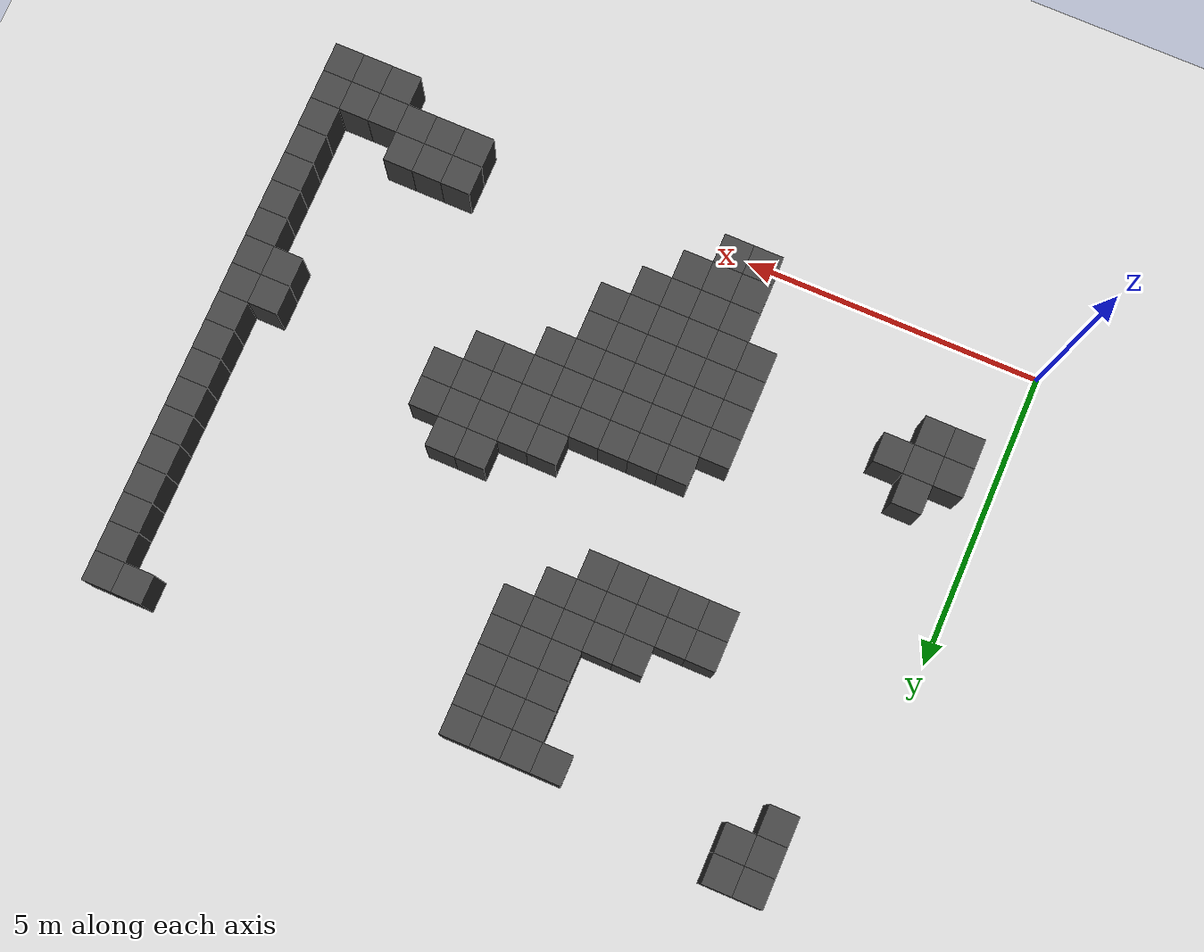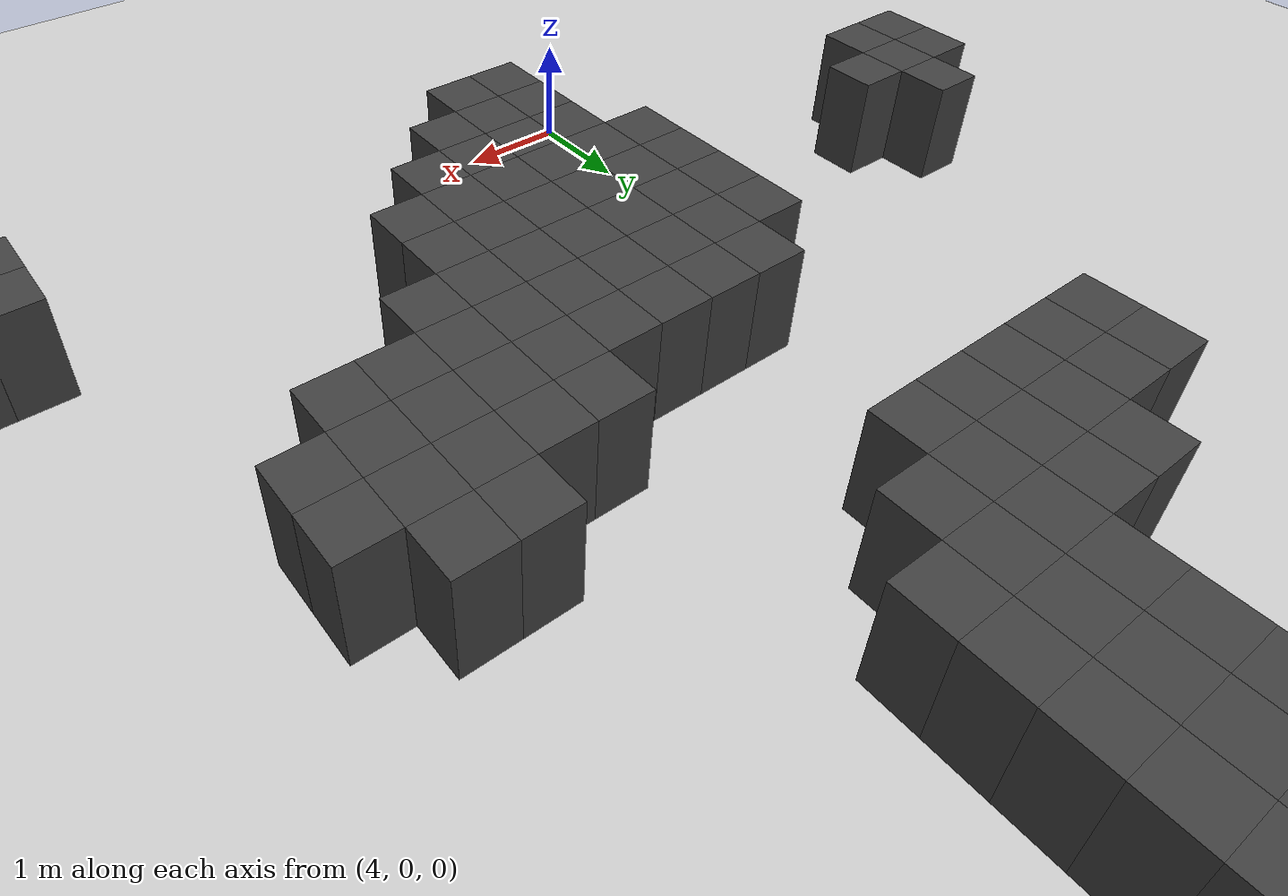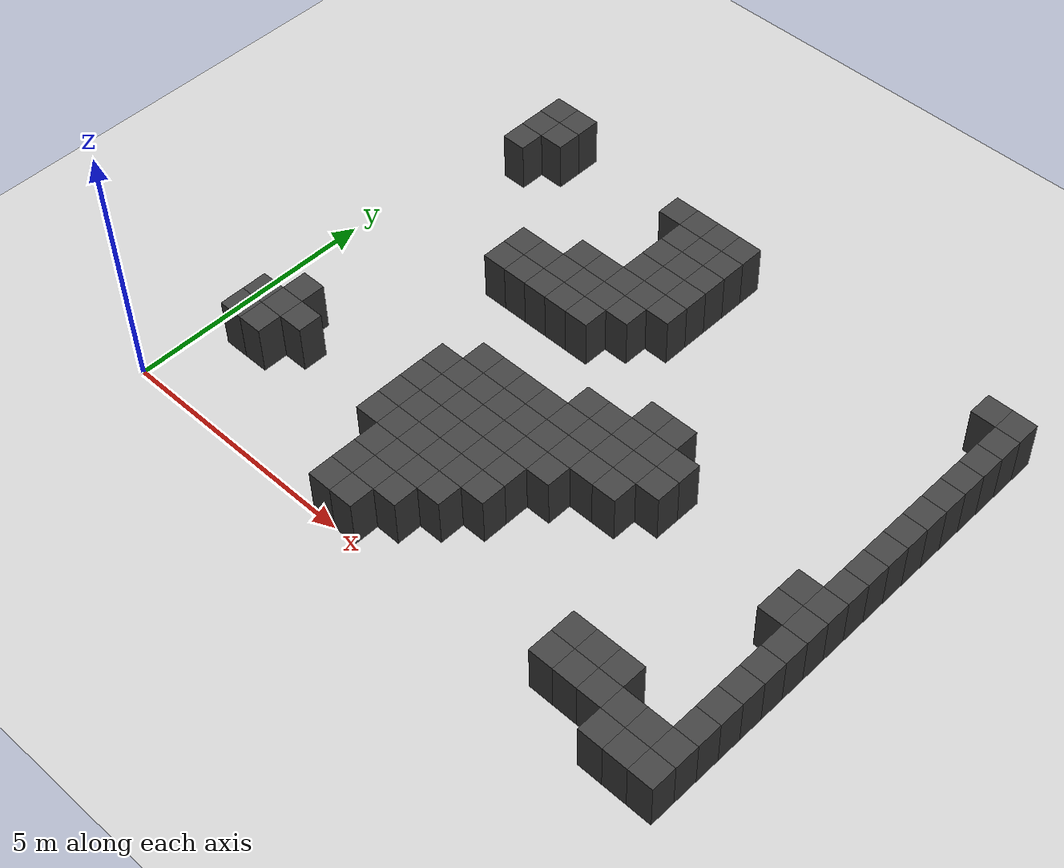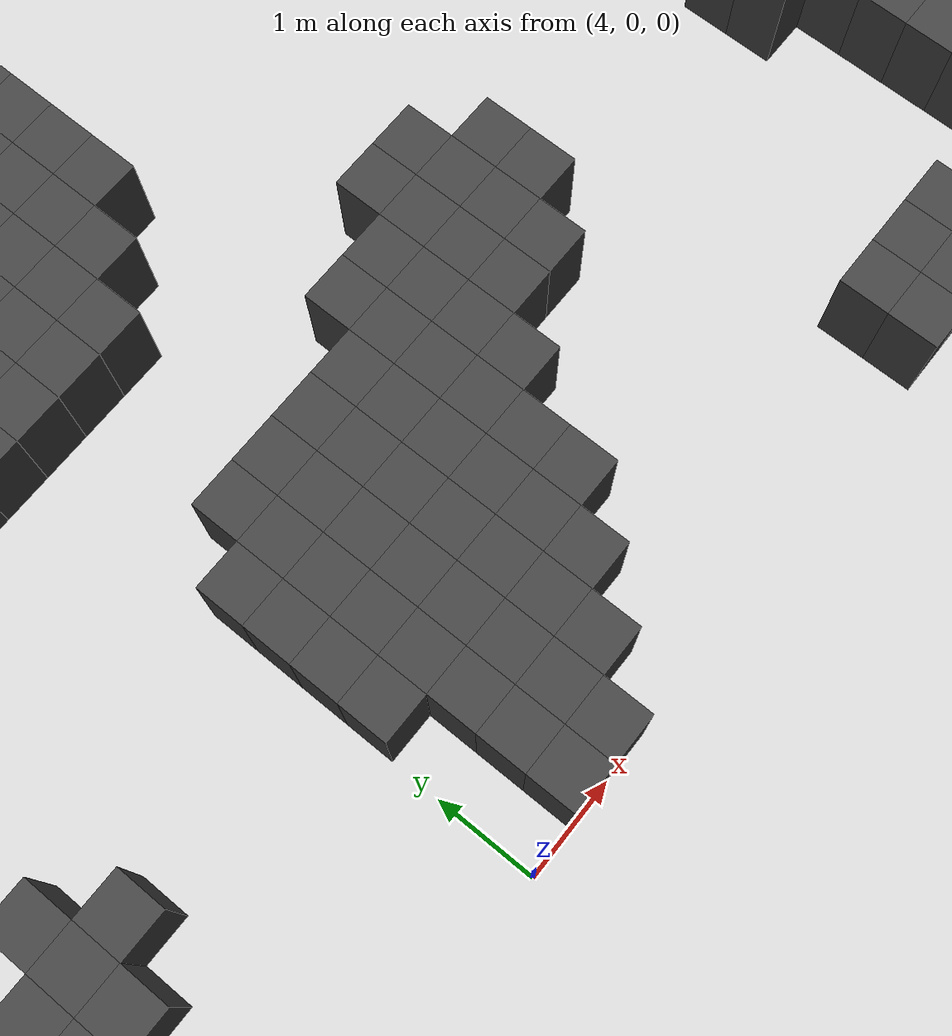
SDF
<sdf version="1.7">
 <world name="map_9687">
  <model name="ground_plane">
   <static>true</static>
   <link name="link">
    <collision name="collision">
     <geometry><plane><normal>0 0 1</normal><size>200 200</size></plane></geometry>
    </collision>
    <visual name="visual">
     <geometry><plane><normal>0 0 1</normal><size>200 200</size></plane></geometry>
     <material><ambient>0.8 0.8 0.8 1</ambient><diffuse>0.8 0.8 0.8 1</diffuse></material>
    </visual>
   </link>
  </model>
  <model name="maze_environment">
   <static>true</static>
   <link name="wall_177">
    <pose>1.250 9.250 0.500 0 0 0</pose>
    <collision name="col"><geometry><box><size>0.5 0.5 1.0</size></box></geometry></collision>
    <visual name="vis">
     <geometry><box><size>0.5 0.5 1.0</size></box></geometry>
     <material><ambient>0.15 0.15 0.15 1</ambient><diffuse>0.25 0.25 0.25 1</diffuse></material>
    </visual>
   </link>
   <link name="wall_178">
    <pose>1.750 9.250 0.500 0 0 0</pose>
    <collision name="col"><geometry><box><size>0.5 0.5 1.0</size></box></geometry></collision>
    <visual name="vis">
     <geometry><box><size>0.5 0.5 1.0</size></box></geometry>
     <material><ambient>0.15 0.15 0.15 1</ambient><diffuse>0.25 0.25 0.25 1</diffuse></material>
    </visual>
   </link>
   <link name="wall_193">
    <pose>1.250 8.750 0.500 0 0 0</pose>
    <collision name="col"><geometry><box><size>0.5 0.5 1.0</size></box></geometry></collision>
    <visual name="vis">
     <geometry><box><size>0.5 0.5 1.0</size></box></geometry>
     <material><ambient>0.15 0.15 0.15 1</ambient><diffuse>0.25 0.25 0.25 1</diffuse></material>
    </visual>
   </link>
   <link name="wall_194">
    <pose>1.750 8.750 0.500 0 0 0</pose>
    <collision name="col"><geometry><box><size>0.5 0.5 1.0</size></box></geometry></collision>
    <visual name="vis">
     <geometry><box><size>0.5 0.5 1.0</size></box></geometry>
     <material><ambient>0.15 0.15 0.15 1</ambient><diffuse>0.25 0.25 0.25 1</diffuse></material>
    </visual>
   </link>
   <link name="wall_195">
    <pose>4.750 8.750 0.500 0 0 0</pose>
    <collision name="col"><geometry><box><size>0.5 0.5 1.0</size></box></geometry></collision>
    <visual name="vis">
     <geometry><box><size>0.5 0.5 1.0</size></box></geometry>
     <material><ambient>0.15 0.15 0.15 1</ambient><diffuse>0.25 0.25 0.25 1</diffuse></material>
    </visual>
   </link>
   <link name="wall_196">
    <pose>5.250 8.750 0.500 0 0 0</pose>
    <collision name="col"><geometry><box><size>0.5 0.5 1.0</size></box></geometry></collision>
    <visual name="vis">
     <geometry><box><size>0.5 0.5 1.0</size></box></geometry>
     <material><ambient>0.15 0.15 0.15 1</ambient><diffuse>0.25 0.25 0.25 1</diffuse></material>
    </visual>
   </link>
   <link name="wall_197">
    <pose>5.750 8.750 0.500 0 0 0</pose>
    <collision name="col"><geometry><box><size>0.5 0.5 1.0</size></box></geometry></collision>
    <visual name="vis">
     <geometry><box><size>0.5 0.5 1.0</size></box></geometry>
     <material><ambient>0.15 0.15 0.15 1</ambient><diffuse>0.25 0.25 0.25 1</diffuse></material>
    </visual>
   </link>
   <link name="wall_198">
    <pose>6.250 8.750 0.500 0 0 0</pose>
    <collision name="col"><geometry><box><size>0.5 0.5 1.0</size></box></geometry></collision>
    <visual name="vis">
     <geometry><box><size>0.5 0.5 1.0</size></box></geometry>
     <material><ambient>0.15 0.15 0.15 1</ambient><diffuse>0.25 0.25 0.25 1</diffuse></material>
    </visual>
   </link>
   <link name="wall_199">
    <pose>11.750 8.750 0.500 0 0 0</pose>
    <collision name="col"><geometry><box><size>0.5 0.5 1.0</size></box></geometry></collision>
    <visual name="vis">
     <geometry><box><size>0.5 0.5 1.0</size></box></geometry>
     <material><ambient>0.15 0.15 0.15 1</ambient><diffuse>0.25 0.25 0.25 1</diffuse></material>
    </visual>
   </link>
   <link name="wall_200">
    <pose>12.250 8.750 0.500 0 0 0</pose>
    <collision name="col"><geometry><box><size>0.5 0.5 1.0</size></box></geometry></collision>
    <visual name="vis">
     <geometry><box><size>0.5 0.5 1.0</size></box></geometry>
     <material><ambient>0.15 0.15 0.15 1</ambient><diffuse>0.25 0.25 0.25 1</diffuse></material>
    </visual>
   </link>
   <link name="wall_205">
    <pose>1.250 8.250 0.500 0 0 0</pose>
    <collision name="col"><geometry><box><size>0.5 0.5 1.0</size></box></geometry></collision>
    <visual name="vis">
     <geometry><box><size>0.5 0.5 1.0</size></box></geometry>
     <material><ambient>0.15 0.15 0.15 1</ambient><diffuse>0.25 0.25 0.25 1</diffuse></material>
    </visual>
   </link>
   <link name="wall_206">
    <pose>5.250 8.250 0.500 0 0 0</pose>
    <collision name="col"><geometry><box><size>0.5 0.5 1.0</size></box></geometry></collision>
    <visual name="vis">
     <geometry><box><size>0.5 0.5 1.0</size></box></geometry>
     <material><ambient>0.15 0.15 0.15 1</ambient><diffuse>0.25 0.25 0.25 1</diffuse></material>
    </visual>
   </link>
   <link name="wall_207">
    <pose>5.750 8.250 0.500 0 0 0</pose>
    <collision name="col"><geometry><box><size>0.5 0.5 1.0</size></box></geometry></collision>
    <visual name="vis">
     <geometry><box><size>0.5 0.5 1.0</size></box></geometry>
     <material><ambient>0.15 0.15 0.15 1</ambient><diffuse>0.25 0.25 0.25 1</diffuse></material>
    </visual>
   </link>
   <link name="wall_208">
    <pose>6.250 8.250 0.500 0 0 0</pose>
    <collision name="col"><geometry><box><size>0.5 0.5 1.0</size></box></geometry></collision>
    <visual name="vis">
     <geometry><box><size>0.5 0.5 1.0</size></box></geometry>
     <material><ambient>0.15 0.15 0.15 1</ambient><diffuse>0.25 0.25 0.25 1</diffuse></material>
    </visual>
   </link>
   <link name="wall_209">
    <pose>12.250 8.250 0.500 0 0 0</pose>
    <collision name="col"><geometry><box><size>0.5 0.5 1.0</size></box></geometry></collision>
    <visual name="vis">
     <geometry><box><size>0.5 0.5 1.0</size></box></geometry>
     <material><ambient>0.15 0.15 0.15 1</ambient><diffuse>0.25 0.25 0.25 1</diffuse></material>
    </visual>
   </link>
   <link name="wall_218">
    <pose>5.250 7.750 0.500 0 0 0</pose>
    <collision name="col"><geometry><box><size>0.5 0.5 1.0</size></box></geometry></collision>
    <visual name="vis">
     <geometry><box><size>0.5 0.5 1.0</size></box></geometry>
     <material><ambient>0.15 0.15 0.15 1</ambient><diffuse>0.25 0.25 0.25 1</diffuse></material>
    </visual>
   </link>
   <link name="wall_219">
    <pose>5.750 7.750 0.500 0 0 0</pose>
    <collision name="col"><geometry><box><size>0.5 0.5 1.0</size></box></geometry></collision>
    <visual name="vis">
     <geometry><box><size>0.5 0.5 1.0</size></box></geometry>
     <material><ambient>0.15 0.15 0.15 1</ambient><diffuse>0.25 0.25 0.25 1</diffuse></material>
    </visual>
   </link>
   <link name="wall_220">
    <pose>6.250 7.750 0.500 0 0 0</pose>
    <collision name="col"><geometry><box><size>0.5 0.5 1.0</size></box></geometry></collision>
    <visual name="vis">
     <geometry><box><size>0.5 0.5 1.0</size></box></geometry>
     <material><ambient>0.15 0.15 0.15 1</ambient><diffuse>0.25 0.25 0.25 1</diffuse></material>
    </visual>
   </link>
   <link name="wall_221">
    <pose>12.250 7.750 0.500 0 0 0</pose>
    <collision name="col"><geometry><box><size>0.5 0.5 1.0</size></box></geometry></collision>
    <visual name="vis">
     <geometry><box><size>0.5 0.5 1.0</size></box></geometry>
     <material><ambient>0.15 0.15 0.15 1</ambient><diffuse>0.25 0.25 0.25 1</diffuse></material>
    </visual>
   </link>
   <link name="wall_231">
    <pose>5.250 7.250 0.500 0 0 0</pose>
    <collision name="col"><geometry><box><size>0.5 0.5 1.0</size></box></geometry></collision>
    <visual name="vis">
     <geometry><box><size>0.5 0.5 1.0</size></box></geometry>
     <material><ambient>0.15 0.15 0.15 1</ambient><diffuse>0.25 0.25 0.25 1</diffuse></material>
    </visual>
   </link>
   <link name="wall_232">
    <pose>5.750 7.250 0.500 0 0 0</pose>
    <collision name="col"><geometry><box><size>0.5 0.5 1.0</size></box></geometry></collision>
    <visual name="vis">
     <geometry><box><size>0.5 0.5 1.0</size></box></geometry>
     <material><ambient>0.15 0.15 0.15 1</ambient><diffuse>0.25 0.25 0.25 1</diffuse></material>
    </visual>
   </link>
   <link name="wall_233">
    <pose>6.250 7.250 0.500 0 0 0</pose>
    <collision name="col"><geometry><box><size>0.5 0.5 1.0</size></box></geometry></collision>
    <visual name="vis">
     <geometry><box><size>0.5 0.5 1.0</size></box></geometry>
     <material><ambient>0.15 0.15 0.15 1</ambient><diffuse>0.25 0.25 0.25 1</diffuse></material>
    </visual>
   </link>
   <link name="wall_234">
    <pose>12.250 7.250 0.500 0 0 0</pose>
    <collision name="col"><geometry><box><size>0.5 0.5 1.0</size></box></geometry></collision>
    <visual name="vis">
     <geometry><box><size>0.5 0.5 1.0</size></box></geometry>
     <material><ambient>0.15 0.15 0.15 1</ambient><diffuse>0.25 0.25 0.25 1</diffuse></material>
    </visual>
   </link>
   <link name="wall_244">
    <pose>4.250 6.750 0.500 0 0 0</pose>
    <collision name="col"><geometry><box><size>0.5 0.5 1.0</size></box></geometry></collision>
    <visual name="vis">
     <geometry><box><size>0.5 0.5 1.0</size></box></geometry>
     <material><ambient>0.15 0.15 0.15 1</ambient><diffuse>0.25 0.25 0.25 1</diffuse></material>
    </visual>
   </link>
   <link name="wall_245">
    <pose>4.750 6.750 0.500 0 0 0</pose>
    <collision name="col"><geometry><box><size>0.5 0.5 1.0</size></box></geometry></collision>
    <visual name="vis">
     <geometry><box><size>0.5 0.5 1.0</size></box></geometry>
     <material><ambient>0.15 0.15 0.15 1</ambient><diffuse>0.25 0.25 0.25 1</diffuse></material>
    </visual>
   </link>
   <link name="wall_246">
    <pose>5.250 6.750 0.500 0 0 0</pose>
    <collision name="col"><geometry><box><size>0.5 0.5 1.0</size></box></geometry></collision>
    <visual name="vis">
     <geometry><box><size>0.5 0.5 1.0</size></box></geometry>
     <material><ambient>0.15 0.15 0.15 1</ambient><diffuse>0.25 0.25 0.25 1</diffuse></material>
    </visual>
   </link>
   <link name="wall_247">
    <pose>5.750 6.750 0.500 0 0 0</pose>
    <collision name="col"><geometry><box><size>0.5 0.5 1.0</size></box></geometry></collision>
    <visual name="vis">
     <geometry><box><size>0.5 0.5 1.0</size></box></geometry>
     <material><ambient>0.15 0.15 0.15 1</ambient><diffuse>0.25 0.25 0.25 1</diffuse></material>
    </visual>
   </link>
   <link name="wall_248">
    <pose>6.250 6.750 0.500 0 0 0</pose>
    <collision name="col"><geometry><box><size>0.5 0.5 1.0</size></box></geometry></collision>
    <visual name="vis">
     <geometry><box><size>0.5 0.5 1.0</size></box></geometry>
     <material><ambient>0.15 0.15 0.15 1</ambient><diffuse>0.25 0.25 0.25 1</diffuse></material>
    </visual>
   </link>
   <link name="wall_249">
    <pose>12.250 6.750 0.500 0 0 0</pose>
    <collision name="col"><geometry><box><size>0.5 0.5 1.0</size></box></geometry></collision>
    <visual name="vis">
     <geometry><box><size>0.5 0.5 1.0</size></box></geometry>
     <material><ambient>0.15 0.15 0.15 1</ambient><diffuse>0.25 0.25 0.25 1</diffuse></material>
    </visual>
   </link>
   <link name="wall_256">
    <pose>3.250 6.250 0.500 0 0 0</pose>
    <collision name="col"><geometry><box><size>0.5 0.5 1.0</size></box></geometry></collision>
    <visual name="vis">
     <geometry><box><size>0.5 0.5 1.0</size></box></geometry>
     <material><ambient>0.15 0.15 0.15 1</ambient><diffuse>0.25 0.25 0.25 1</diffuse></material>
    </visual>
   </link>
   <link name="wall_257">
    <pose>3.750 6.250 0.500 0 0 0</pose>
    <collision name="col"><geometry><box><size>0.5 0.5 1.0</size></box></geometry></collision>
    <visual name="vis">
     <geometry><box><size>0.5 0.5 1.0</size></box></geometry>
     <material><ambient>0.15 0.15 0.15 1</ambient><diffuse>0.25 0.25 0.25 1</diffuse></material>
    </visual>
   </link>
   <link name="wall_258">
    <pose>4.250 6.250 0.500 0 0 0</pose>
    <collision name="col"><geometry><box><size>0.5 0.5 1.0</size></box></geometry></collision>
    <visual name="vis">
     <geometry><box><size>0.5 0.5 1.0</size></box></geometry>
     <material><ambient>0.15 0.15 0.15 1</ambient><diffuse>0.25 0.25 0.25 1</diffuse></material>
    </visual>
   </link>
   <link name="wall_259">
    <pose>4.750 6.250 0.500 0 0 0</pose>
    <collision name="col"><geometry><box><size>0.5 0.5 1.0</size></box></geometry></collision>
    <visual name="vis">
     <geometry><box><size>0.5 0.5 1.0</size></box></geometry>
     <material><ambient>0.15 0.15 0.15 1</ambient><diffuse>0.25 0.25 0.25 1</diffuse></material>
    </visual>
   </link>
   <link name="wall_260">
    <pose>5.250 6.250 0.500 0 0 0</pose>
    <collision name="col"><geometry><box><size>0.5 0.5 1.0</size></box></geometry></collision>
    <visual name="vis">
     <geometry><box><size>0.5 0.5 1.0</size></box></geometry>
     <material><ambient>0.15 0.15 0.15 1</ambient><diffuse>0.25 0.25 0.25 1</diffuse></material>
    </visual>
   </link>
   <link name="wall_261">
    <pose>5.750 6.250 0.500 0 0 0</pose>
    <collision name="col"><geometry><box><size>0.5 0.5 1.0</size></box></geometry></collision>
    <visual name="vis">
     <geometry><box><size>0.5 0.5 1.0</size></box></geometry>
     <material><ambient>0.15 0.15 0.15 1</ambient><diffuse>0.25 0.25 0.25 1</diffuse></material>
    </visual>
   </link>
   <link name="wall_262">
    <pose>12.250 6.250 0.500 0 0 0</pose>
    <collision name="col"><geometry><box><size>0.5 0.5 1.0</size></box></geometry></collision>
    <visual name="vis">
     <geometry><box><size>0.5 0.5 1.0</size></box></geometry>
     <material><ambient>0.15 0.15 0.15 1</ambient><diffuse>0.25 0.25 0.25 1</diffuse></material>
    </visual>
   </link>
   <link name="wall_267">
    <pose>3.250 5.750 0.500 0 0 0</pose>
    <collision name="col"><geometry><box><size>0.5 0.5 1.0</size></box></geometry></collision>
    <visual name="vis">
     <geometry><box><size>0.5 0.5 1.0</size></box></geometry>
     <material><ambient>0.15 0.15 0.15 1</ambient><diffuse>0.25 0.25 0.25 1</diffuse></material>
    </visual>
   </link>
   <link name="wall_268">
    <pose>3.750 5.750 0.500 0 0 0</pose>
    <collision name="col"><geometry><box><size>0.5 0.5 1.0</size></box></geometry></collision>
    <visual name="vis">
     <geometry><box><size>0.5 0.5 1.0</size></box></geometry>
     <material><ambient>0.15 0.15 0.15 1</ambient><diffuse>0.25 0.25 0.25 1</diffuse></material>
    </visual>
   </link>
   <link name="wall_269">
    <pose>4.250 5.750 0.500 0 0 0</pose>
    <collision name="col"><geometry><box><size>0.5 0.5 1.0</size></box></geometry></collision>
    <visual name="vis">
     <geometry><box><size>0.5 0.5 1.0</size></box></geometry>
     <material><ambient>0.15 0.15 0.15 1</ambient><diffuse>0.25 0.25 0.25 1</diffuse></material>
    </visual>
   </link>
   <link name="wall_270">
    <pose>4.750 5.750 0.500 0 0 0</pose>
    <collision name="col"><geometry><box><size>0.5 0.5 1.0</size></box></geometry></collision>
    <visual name="vis">
     <geometry><box><size>0.5 0.5 1.0</size></box></geometry>
     <material><ambient>0.15 0.15 0.15 1</ambient><diffuse>0.25 0.25 0.25 1</diffuse></material>
    </visual>
   </link>
   <link name="wall_271">
    <pose>5.250 5.750 0.500 0 0 0</pose>
    <collision name="col"><geometry><box><size>0.5 0.5 1.0</size></box></geometry></collision>
    <visual name="vis">
     <geometry><box><size>0.5 0.5 1.0</size></box></geometry>
     <material><ambient>0.15 0.15 0.15 1</ambient><diffuse>0.25 0.25 0.25 1</diffuse></material>
    </visual>
   </link>
   <link name="wall_272">
    <pose>12.250 5.750 0.500 0 0 0</pose>
    <collision name="col"><geometry><box><size>0.5 0.5 1.0</size></box></geometry></collision>
    <visual name="vis">
     <geometry><box><size>0.5 0.5 1.0</size></box></geometry>
     <material><ambient>0.15 0.15 0.15 1</ambient><diffuse>0.25 0.25 0.25 1</diffuse></material>
    </visual>
   </link>
   <link name="wall_277">
    <pose>12.250 5.250 0.500 0 0 0</pose>
    <collision name="col"><geometry><box><size>0.5 0.5 1.0</size></box></geometry></collision>
    <visual name="vis">
     <geometry><box><size>0.5 0.5 1.0</size></box></geometry>
     <material><ambient>0.15 0.15 0.15 1</ambient><diffuse>0.25 0.25 0.25 1</diffuse></material>
    </visual>
   </link>
   <link name="wall_283">
    <pose>7.750 4.750 0.500 0 0 0</pose>
    <collision name="col"><geometry><box><size>0.5 0.5 1.0</size></box></geometry></collision>
    <visual name="vis">
     <geometry><box><size>0.5 0.5 1.0</size></box></geometry>
     <material><ambient>0.15 0.15 0.15 1</ambient><diffuse>0.25 0.25 0.25 1</diffuse></material>
    </visual>
   </link>
   <link name="wall_284">
    <pose>8.250 4.750 0.500 0 0 0</pose>
    <collision name="col"><geometry><box><size>0.5 0.5 1.0</size></box></geometry></collision>
    <visual name="vis">
     <geometry><box><size>0.5 0.5 1.0</size></box></geometry>
     <material><ambient>0.15 0.15 0.15 1</ambient><diffuse>0.25 0.25 0.25 1</diffuse></material>
    </visual>
   </link>
   <link name="wall_285">
    <pose>12.250 4.750 0.500 0 0 0</pose>
    <collision name="col"><geometry><box><size>0.5 0.5 1.0</size></box></geometry></collision>
    <visual name="vis">
     <geometry><box><size>0.5 0.5 1.0</size></box></geometry>
     <material><ambient>0.15 0.15 0.15 1</ambient><diffuse>0.25 0.25 0.25 1</diffuse></material>
    </visual>
   </link>
   <link name="wall_296">
    <pose>6.750 4.250 0.500 0 0 0</pose>
    <collision name="col"><geometry><box><size>0.5 0.5 1.0</size></box></geometry></collision>
    <visual name="vis">
     <geometry><box><size>0.5 0.5 1.0</size></box></geometry>
     <material><ambient>0.15 0.15 0.15 1</ambient><diffuse>0.25 0.25 0.25 1</diffuse></material>
    </visual>
   </link>
   <link name="wall_297">
    <pose>7.250 4.250 0.500 0 0 0</pose>
    <collision name="col"><geometry><box><size>0.5 0.5 1.0</size></box></geometry></collision>
    <visual name="vis">
     <geometry><box><size>0.5 0.5 1.0</size></box></geometry>
     <material><ambient>0.15 0.15 0.15 1</ambient><diffuse>0.25 0.25 0.25 1</diffuse></material>
    </visual>
   </link>
   <link name="wall_298">
    <pose>7.750 4.250 0.500 0 0 0</pose>
    <collision name="col"><geometry><box><size>0.5 0.5 1.0</size></box></geometry></collision>
    <visual name="vis">
     <geometry><box><size>0.5 0.5 1.0</size></box></geometry>
     <material><ambient>0.15 0.15 0.15 1</ambient><diffuse>0.25 0.25 0.25 1</diffuse></material>
    </visual>
   </link>
   <link name="wall_299">
    <pose>8.250 4.250 0.500 0 0 0</pose>
    <collision name="col"><geometry><box><size>0.5 0.5 1.0</size></box></geometry></collision>
    <visual name="vis">
     <geometry><box><size>0.5 0.5 1.0</size></box></geometry>
     <material><ambient>0.15 0.15 0.15 1</ambient><diffuse>0.25 0.25 0.25 1</diffuse></material>
    </visual>
   </link>
   <link name="wall_300">
    <pose>8.750 4.250 0.500 0 0 0</pose>
    <collision name="col"><geometry><box><size>0.5 0.5 1.0</size></box></geometry></collision>
    <visual name="vis">
     <geometry><box><size>0.5 0.5 1.0</size></box></geometry>
     <material><ambient>0.15 0.15 0.15 1</ambient><diffuse>0.25 0.25 0.25 1</diffuse></material>
    </visual>
   </link>
   <link name="wall_301">
    <pose>12.250 4.250 0.500 0 0 0</pose>
    <collision name="col"><geometry><box><size>0.5 0.5 1.0</size></box></geometry></collision>
    <visual name="vis">
     <geometry><box><size>0.5 0.5 1.0</size></box></geometry>
     <material><ambient>0.15 0.15 0.15 1</ambient><diffuse>0.25 0.25 0.25 1</diffuse></material>
    </visual>
   </link>
   <link name="wall_314">
    <pose>4.750 3.750 0.500 0 0 0</pose>
    <collision name="col"><geometry><box><size>0.5 0.5 1.0</size></box></geometry></collision>
    <visual name="vis">
     <geometry><box><size>0.5 0.5 1.0</size></box></geometry>
     <material><ambient>0.15 0.15 0.15 1</ambient><diffuse>0.25 0.25 0.25 1</diffuse></material>
    </visual>
   </link>
   <link name="wall_315">
    <pose>5.250 3.750 0.500 0 0 0</pose>
    <collision name="col"><geometry><box><size>0.5 0.5 1.0</size></box></geometry></collision>
    <visual name="vis">
     <geometry><box><size>0.5 0.5 1.0</size></box></geometry>
     <material><ambient>0.15 0.15 0.15 1</ambient><diffuse>0.25 0.25 0.25 1</diffuse></material>
    </visual>
   </link>
   <link name="wall_316">
    <pose>5.750 3.750 0.500 0 0 0</pose>
    <collision name="col"><geometry><box><size>0.5 0.5 1.0</size></box></geometry></collision>
    <visual name="vis">
     <geometry><box><size>0.5 0.5 1.0</size></box></geometry>
     <material><ambient>0.15 0.15 0.15 1</ambient><diffuse>0.25 0.25 0.25 1</diffuse></material>
    </visual>
   </link>
   <link name="wall_317">
    <pose>6.250 3.750 0.500 0 0 0</pose>
    <collision name="col"><geometry><box><size>0.5 0.5 1.0</size></box></geometry></collision>
    <visual name="vis">
     <geometry><box><size>0.5 0.5 1.0</size></box></geometry>
     <material><ambient>0.15 0.15 0.15 1</ambient><diffuse>0.25 0.25 0.25 1</diffuse></material>
    </visual>
   </link>
   <link name="wall_318">
    <pose>6.750 3.750 0.500 0 0 0</pose>
    <collision name="col"><geometry><box><size>0.5 0.5 1.0</size></box></geometry></collision>
    <visual name="vis">
     <geometry><box><size>0.5 0.5 1.0</size></box></geometry>
     <material><ambient>0.15 0.15 0.15 1</ambient><diffuse>0.25 0.25 0.25 1</diffuse></material>
    </visual>
   </link>
   <link name="wall_319">
    <pose>7.250 3.750 0.500 0 0 0</pose>
    <collision name="col"><geometry><box><size>0.5 0.5 1.0</size></box></geometry></collision>
    <visual name="vis">
     <geometry><box><size>0.5 0.5 1.0</size></box></geometry>
     <material><ambient>0.15 0.15 0.15 1</ambient><diffuse>0.25 0.25 0.25 1</diffuse></material>
    </visual>
   </link>
   <link name="wall_320">
    <pose>7.750 3.750 0.500 0 0 0</pose>
    <collision name="col"><geometry><box><size>0.5 0.5 1.0</size></box></geometry></collision>
    <visual name="vis">
     <geometry><box><size>0.5 0.5 1.0</size></box></geometry>
     <material><ambient>0.15 0.15 0.15 1</ambient><diffuse>0.25 0.25 0.25 1</diffuse></material>
    </visual>
   </link>
   <link name="wall_321">
    <pose>8.250 3.750 0.500 0 0 0</pose>
    <collision name="col"><geometry><box><size>0.5 0.5 1.0</size></box></geometry></collision>
    <visual name="vis">
     <geometry><box><size>0.5 0.5 1.0</size></box></geometry>
     <material><ambient>0.15 0.15 0.15 1</ambient><diffuse>0.25 0.25 0.25 1</diffuse></material>
    </visual>
   </link>
   <link name="wall_322">
    <pose>8.750 3.750 0.500 0 0 0</pose>
    <collision name="col"><geometry><box><size>0.5 0.5 1.0</size></box></geometry></collision>
    <visual name="vis">
     <geometry><box><size>0.5 0.5 1.0</size></box></geometry>
     <material><ambient>0.15 0.15 0.15 1</ambient><diffuse>0.25 0.25 0.25 1</diffuse></material>
    </visual>
   </link>
   <link name="wall_323">
    <pose>11.750 3.750 0.500 0 0 0</pose>
    <collision name="col"><geometry><box><size>0.5 0.5 1.0</size></box></geometry></collision>
    <visual name="vis">
     <geometry><box><size>0.5 0.5 1.0</size></box></geometry>
     <material><ambient>0.15 0.15 0.15 1</ambient><diffuse>0.25 0.25 0.25 1</diffuse></material>
    </visual>
   </link>
   <link name="wall_324">
    <pose>12.250 3.750 0.500 0 0 0</pose>
    <collision name="col"><geometry><box><size>0.5 0.5 1.0</size></box></geometry></collision>
    <visual name="vis">
     <geometry><box><size>0.5 0.5 1.0</size></box></geometry>
     <material><ambient>0.15 0.15 0.15 1</ambient><diffuse>0.25 0.25 0.25 1</diffuse></material>
    </visual>
   </link>
   <link name="wall_336">
    <pose>4.250 3.250 0.500 0 0 0</pose>
    <collision name="col"><geometry><box><size>0.5 0.5 1.0</size></box></geometry></collision>
    <visual name="vis">
     <geometry><box><size>0.5 0.5 1.0</size></box></geometry>
     <material><ambient>0.15 0.15 0.15 1</ambient><diffuse>0.25 0.25 0.25 1</diffuse></material>
    </visual>
   </link>
   <link name="wall_337">
    <pose>4.750 3.250 0.500 0 0 0</pose>
    <collision name="col"><geometry><box><size>0.5 0.5 1.0</size></box></geometry></collision>
    <visual name="vis">
     <geometry><box><size>0.5 0.5 1.0</size></box></geometry>
     <material><ambient>0.15 0.15 0.15 1</ambient><diffuse>0.25 0.25 0.25 1</diffuse></material>
    </visual>
   </link>
   <link name="wall_338">
    <pose>5.250 3.250 0.500 0 0 0</pose>
    <collision name="col"><geometry><box><size>0.5 0.5 1.0</size></box></geometry></collision>
    <visual name="vis">
     <geometry><box><size>0.5 0.5 1.0</size></box></geometry>
     <material><ambient>0.15 0.15 0.15 1</ambient><diffuse>0.25 0.25 0.25 1</diffuse></material>
    </visual>
   </link>
   <link name="wall_339">
    <pose>5.750 3.250 0.500 0 0 0</pose>
    <collision name="col"><geometry><box><size>0.5 0.5 1.0</size></box></geometry></collision>
    <visual name="vis">
     <geometry><box><size>0.5 0.5 1.0</size></box></geometry>
     <material><ambient>0.15 0.15 0.15 1</ambient><diffuse>0.25 0.25 0.25 1</diffuse></material>
    </visual>
   </link>
   <link name="wall_340">
    <pose>6.250 3.250 0.500 0 0 0</pose>
    <collision name="col"><geometry><box><size>0.5 0.5 1.0</size></box></geometry></collision>
    <visual name="vis">
     <geometry><box><size>0.5 0.5 1.0</size></box></geometry>
     <material><ambient>0.15 0.15 0.15 1</ambient><diffuse>0.25 0.25 0.25 1</diffuse></material>
    </visual>
   </link>
   <link name="wall_341">
    <pose>6.750 3.250 0.500 0 0 0</pose>
    <collision name="col"><geometry><box><size>0.5 0.5 1.0</size></box></geometry></collision>
    <visual name="vis">
     <geometry><box><size>0.5 0.5 1.0</size></box></geometry>
     <material><ambient>0.15 0.15 0.15 1</ambient><diffuse>0.25 0.25 0.25 1</diffuse></material>
    </visual>
   </link>
   <link name="wall_342">
    <pose>7.250 3.250 0.500 0 0 0</pose>
    <collision name="col"><geometry><box><size>0.5 0.5 1.0</size></box></geometry></collision>
    <visual name="vis">
     <geometry><box><size>0.5 0.5 1.0</size></box></geometry>
     <material><ambient>0.15 0.15 0.15 1</ambient><diffuse>0.25 0.25 0.25 1</diffuse></material>
    </visual>
   </link>
   <link name="wall_343">
    <pose>7.750 3.250 0.500 0 0 0</pose>
    <collision name="col"><geometry><box><size>0.5 0.5 1.0</size></box></geometry></collision>
    <visual name="vis">
     <geometry><box><size>0.5 0.5 1.0</size></box></geometry>
     <material><ambient>0.15 0.15 0.15 1</ambient><diffuse>0.25 0.25 0.25 1</diffuse></material>
    </visual>
   </link>
   <link name="wall_344">
    <pose>8.250 3.250 0.500 0 0 0</pose>
    <collision name="col"><geometry><box><size>0.5 0.5 1.0</size></box></geometry></collision>
    <visual name="vis">
     <geometry><box><size>0.5 0.5 1.0</size></box></geometry>
     <material><ambient>0.15 0.15 0.15 1</ambient><diffuse>0.25 0.25 0.25 1</diffuse></material>
    </visual>
   </link>
   <link name="wall_345">
    <pose>11.750 3.250 0.500 0 0 0</pose>
    <collision name="col"><geometry><box><size>0.5 0.5 1.0</size></box></geometry></collision>
    <visual name="vis">
     <geometry><box><size>0.5 0.5 1.0</size></box></geometry>
     <material><ambient>0.15 0.15 0.15 1</ambient><diffuse>0.25 0.25 0.25 1</diffuse></material>
    </visual>
   </link>
   <link name="wall_346">
    <pose>12.250 3.250 0.500 0 0 0</pose>
    <collision name="col"><geometry><box><size>0.5 0.5 1.0</size></box></geometry></collision>
    <visual name="vis">
     <geometry><box><size>0.5 0.5 1.0</size></box></geometry>
     <material><ambient>0.15 0.15 0.15 1</ambient><diffuse>0.25 0.25 0.25 1</diffuse></material>
    </visual>
   </link>
   <link name="wall_357">
    <pose>1.250 2.750 0.500 0 0 0</pose>
    <collision name="col"><geometry><box><size>0.5 0.5 1.0</size></box></geometry></collision>
    <visual name="vis">
     <geometry><box><size>0.5 0.5 1.0</size></box></geometry>
     <material><ambient>0.15 0.15 0.15 1</ambient><diffuse>0.25 0.25 0.25 1</diffuse></material>
    </visual>
   </link>
   <link name="wall_358">
    <pose>4.250 2.750 0.500 0 0 0</pose>
    <collision name="col"><geometry><box><size>0.5 0.5 1.0</size></box></geometry></collision>
    <visual name="vis">
     <geometry><box><size>0.5 0.5 1.0</size></box></geometry>
     <material><ambient>0.15 0.15 0.15 1</ambient><diffuse>0.25 0.25 0.25 1</diffuse></material>
    </visual>
   </link>
   <link name="wall_359">
    <pose>4.750 2.750 0.500 0 0 0</pose>
    <collision name="col"><geometry><box><size>0.5 0.5 1.0</size></box></geometry></collision>
    <visual name="vis">
     <geometry><box><size>0.5 0.5 1.0</size></box></geometry>
     <material><ambient>0.15 0.15 0.15 1</ambient><diffuse>0.25 0.25 0.25 1</diffuse></material>
    </visual>
   </link>
   <link name="wall_360">
    <pose>5.250 2.750 0.500 0 0 0</pose>
    <collision name="col"><geometry><box><size>0.5 0.5 1.0</size></box></geometry></collision>
    <visual name="vis">
     <geometry><box><size>0.5 0.5 1.0</size></box></geometry>
     <material><ambient>0.15 0.15 0.15 1</ambient><diffuse>0.25 0.25 0.25 1</diffuse></material>
    </visual>
   </link>
   <link name="wall_361">
    <pose>5.750 2.750 0.500 0 0 0</pose>
    <collision name="col"><geometry><box><size>0.5 0.5 1.0</size></box></geometry></collision>
    <visual name="vis">
     <geometry><box><size>0.5 0.5 1.0</size></box></geometry>
     <material><ambient>0.15 0.15 0.15 1</ambient><diffuse>0.25 0.25 0.25 1</diffuse></material>
    </visual>
   </link>
   <link name="wall_362">
    <pose>6.250 2.750 0.500 0 0 0</pose>
    <collision name="col"><geometry><box><size>0.5 0.5 1.0</size></box></geometry></collision>
    <visual name="vis">
     <geometry><box><size>0.5 0.5 1.0</size></box></geometry>
     <material><ambient>0.15 0.15 0.15 1</ambient><diffuse>0.25 0.25 0.25 1</diffuse></material>
    </visual>
   </link>
   <link name="wall_363">
    <pose>6.750 2.750 0.500 0 0 0</pose>
    <collision name="col"><geometry><box><size>0.5 0.5 1.0</size></box></geometry></collision>
    <visual name="vis">
     <geometry><box><size>0.5 0.5 1.0</size></box></geometry>
     <material><ambient>0.15 0.15 0.15 1</ambient><diffuse>0.25 0.25 0.25 1</diffuse></material>
    </visual>
   </link>
   <link name="wall_364">
    <pose>7.250 2.750 0.500 0 0 0</pose>
    <collision name="col"><geometry><box><size>0.5 0.5 1.0</size></box></geometry></collision>
    <visual name="vis">
     <geometry><box><size>0.5 0.5 1.0</size></box></geometry>
     <material><ambient>0.15 0.15 0.15 1</ambient><diffuse>0.25 0.25 0.25 1</diffuse></material>
    </visual>
   </link>
   <link name="wall_365">
    <pose>12.250 2.750 0.500 0 0 0</pose>
    <collision name="col"><geometry><box><size>0.5 0.5 1.0</size></box></geometry></collision>
    <visual name="vis">
     <geometry><box><size>0.5 0.5 1.0</size></box></geometry>
     <material><ambient>0.15 0.15 0.15 1</ambient><diffuse>0.25 0.25 0.25 1</diffuse></material>
    </visual>
   </link>
   <link name="wall_374">
    <pose>0.750 2.250 0.500 0 0 0</pose>
    <collision name="col"><geometry><box><size>0.5 0.5 1.0</size></box></geometry></collision>
    <visual name="vis">
     <geometry><box><size>0.5 0.5 1.0</size></box></geometry>
     <material><ambient>0.15 0.15 0.15 1</ambient><diffuse>0.25 0.25 0.25 1</diffuse></material>
    </visual>
   </link>
   <link name="wall_375">
    <pose>1.250 2.250 0.500 0 0 0</pose>
    <collision name="col"><geometry><box><size>0.5 0.5 1.0</size></box></geometry></collision>
    <visual name="vis">
     <geometry><box><size>0.5 0.5 1.0</size></box></geometry>
     <material><ambient>0.15 0.15 0.15 1</ambient><diffuse>0.25 0.25 0.25 1</diffuse></material>
    </visual>
   </link>
   <link name="wall_376">
    <pose>1.750 2.250 0.500 0 0 0</pose>
    <collision name="col"><geometry><box><size>0.5 0.5 1.0</size></box></geometry></collision>
    <visual name="vis">
     <geometry><box><size>0.5 0.5 1.0</size></box></geometry>
     <material><ambient>0.15 0.15 0.15 1</ambient><diffuse>0.25 0.25 0.25 1</diffuse></material>
    </visual>
   </link>
   <link name="wall_377">
    <pose>4.250 2.250 0.500 0 0 0</pose>
    <collision name="col"><geometry><box><size>0.5 0.5 1.0</size></box></geometry></collision>
    <visual name="vis">
     <geometry><box><size>0.5 0.5 1.0</size></box></geometry>
     <material><ambient>0.15 0.15 0.15 1</ambient><diffuse>0.25 0.25 0.25 1</diffuse></material>
    </visual>
   </link>
   <link name="wall_378">
    <pose>4.750 2.250 0.500 0 0 0</pose>
    <collision name="col"><geometry><box><size>0.5 0.5 1.0</size></box></geometry></collision>
    <visual name="vis">
     <geometry><box><size>0.5 0.5 1.0</size></box></geometry>
     <material><ambient>0.15 0.15 0.15 1</ambient><diffuse>0.25 0.25 0.25 1</diffuse></material>
    </visual>
   </link>
   <link name="wall_379">
    <pose>5.250 2.250 0.500 0 0 0</pose>
    <collision name="col"><geometry><box><size>0.5 0.5 1.0</size></box></geometry></collision>
    <visual name="vis">
     <geometry><box><size>0.5 0.5 1.0</size></box></geometry>
     <material><ambient>0.15 0.15 0.15 1</ambient><diffuse>0.25 0.25 0.25 1</diffuse></material>
    </visual>
   </link>
   <link name="wall_380">
    <pose>5.750 2.250 0.500 0 0 0</pose>
    <collision name="col"><geometry><box><size>0.5 0.5 1.0</size></box></geometry></collision>
    <visual name="vis">
     <geometry><box><size>0.5 0.5 1.0</size></box></geometry>
     <material><ambient>0.15 0.15 0.15 1</ambient><diffuse>0.25 0.25 0.25 1</diffuse></material>
    </visual>
   </link>
   <link name="wall_381">
    <pose>6.250 2.250 0.500 0 0 0</pose>
    <collision name="col"><geometry><box><size>0.5 0.5 1.0</size></box></geometry></collision>
    <visual name="vis">
     <geometry><box><size>0.5 0.5 1.0</size></box></geometry>
     <material><ambient>0.15 0.15 0.15 1</ambient><diffuse>0.25 0.25 0.25 1</diffuse></material>
    </visual>
   </link>
   <link name="wall_382">
    <pose>6.750 2.250 0.500 0 0 0</pose>
    <collision name="col"><geometry><box><size>0.5 0.5 1.0</size></box></geometry></collision>
    <visual name="vis">
     <geometry><box><size>0.5 0.5 1.0</size></box></geometry>
     <material><ambient>0.15 0.15 0.15 1</ambient><diffuse>0.25 0.25 0.25 1</diffuse></material>
    </visual>
   </link>
   <link name="wall_383">
    <pose>12.250 2.250 0.500 0 0 0</pose>
    <collision name="col"><geometry><box><size>0.5 0.5 1.0</size></box></geometry></collision>
    <visual name="vis">
     <geometry><box><size>0.5 0.5 1.0</size></box></geometry>
     <material><ambient>0.15 0.15 0.15 1</ambient><diffuse>0.25 0.25 0.25 1</diffuse></material>
    </visual>
   </link>
   <link name="wall_391">
    <pose>0.750 1.750 0.500 0 0 0</pose>
    <collision name="col"><geometry><box><size>0.5 0.5 1.0</size></box></geometry></collision>
    <visual name="vis">
     <geometry><box><size>0.5 0.5 1.0</size></box></geometry>
     <material><ambient>0.15 0.15 0.15 1</ambient><diffuse>0.25 0.25 0.25 1</diffuse></material>
    </visual>
   </link>
   <link name="wall_392">
    <pose>1.250 1.750 0.500 0 0 0</pose>
    <collision name="col"><geometry><box><size>0.5 0.5 1.0</size></box></geometry></collision>
    <visual name="vis">
     <geometry><box><size>0.5 0.5 1.0</size></box></geometry>
     <material><ambient>0.15 0.15 0.15 1</ambient><diffuse>0.25 0.25 0.25 1</diffuse></material>
    </visual>
   </link>
   <link name="wall_393">
    <pose>4.250 1.750 0.500 0 0 0</pose>
    <collision name="col"><geometry><box><size>0.5 0.5 1.0</size></box></geometry></collision>
    <visual name="vis">
     <geometry><box><size>0.5 0.5 1.0</size></box></geometry>
     <material><ambient>0.15 0.15 0.15 1</ambient><diffuse>0.25 0.25 0.25 1</diffuse></material>
    </visual>
   </link>
   <link name="wall_394">
    <pose>4.750 1.750 0.500 0 0 0</pose>
    <collision name="col"><geometry><box><size>0.5 0.5 1.0</size></box></geometry></collision>
    <visual name="vis">
     <geometry><box><size>0.5 0.5 1.0</size></box></geometry>
     <material><ambient>0.15 0.15 0.15 1</ambient><diffuse>0.25 0.25 0.25 1</diffuse></material>
    </visual>
   </link>
   <link name="wall_395">
    <pose>5.250 1.750 0.500 0 0 0</pose>
    <collision name="col"><geometry><box><size>0.5 0.5 1.0</size></box></geometry></collision>
    <visual name="vis">
     <geometry><box><size>0.5 0.5 1.0</size></box></geometry>
     <material><ambient>0.15 0.15 0.15 1</ambient><diffuse>0.25 0.25 0.25 1</diffuse></material>
    </visual>
   </link>
   <link name="wall_396">
    <pose>5.750 1.750 0.500 0 0 0</pose>
    <collision name="col"><geometry><box><size>0.5 0.5 1.0</size></box></geometry></collision>
    <visual name="vis">
     <geometry><box><size>0.5 0.5 1.0</size></box></geometry>
     <material><ambient>0.15 0.15 0.15 1</ambient><diffuse>0.25 0.25 0.25 1</diffuse></material>
    </visual>
   </link>
   <link name="wall_397">
    <pose>6.250 1.750 0.500 0 0 0</pose>
    <collision name="col"><geometry><box><size>0.5 0.5 1.0</size></box></geometry></collision>
    <visual name="vis">
     <geometry><box><size>0.5 0.5 1.0</size></box></geometry>
     <material><ambient>0.15 0.15 0.15 1</ambient><diffuse>0.25 0.25 0.25 1</diffuse></material>
    </visual>
   </link>
   <link name="wall_398">
    <pose>6.750 1.750 0.500 0 0 0</pose>
    <collision name="col"><geometry><box><size>0.5 0.5 1.0</size></box></geometry></collision>
    <visual name="vis">
     <geometry><box><size>0.5 0.5 1.0</size></box></geometry>
     <material><ambient>0.15 0.15 0.15 1</ambient><diffuse>0.25 0.25 0.25 1</diffuse></material>
    </visual>
   </link>
   <link name="wall_399">
    <pose>12.250 1.750 0.500 0 0 0</pose>
    <collision name="col"><geometry><box><size>0.5 0.5 1.0</size></box></geometry></collision>
    <visual name="vis">
     <geometry><box><size>0.5 0.5 1.0</size></box></geometry>
     <material><ambient>0.15 0.15 0.15 1</ambient><diffuse>0.25 0.25 0.25 1</diffuse></material>
    </visual>
   </link>
   <link name="wall_407">
    <pose>4.750 1.250 0.500 0 0 0</pose>
    <collision name="col"><geometry><box><size>0.5 0.5 1.0</size></box></geometry></collision>
    <visual name="vis">
     <geometry><box><size>0.5 0.5 1.0</size></box></geometry>
     <material><ambient>0.15 0.15 0.15 1</ambient><diffuse>0.25 0.25 0.25 1</diffuse></material>
    </visual>
   </link>
   <link name="wall_408">
    <pose>5.250 1.250 0.500 0 0 0</pose>
    <collision name="col"><geometry><box><size>0.5 0.5 1.0</size></box></geometry></collision>
    <visual name="vis">
     <geometry><box><size>0.5 0.5 1.0</size></box></geometry>
     <material><ambient>0.15 0.15 0.15 1</ambient><diffuse>0.25 0.25 0.25 1</diffuse></material>
    </visual>
   </link>
   <link name="wall_409">
    <pose>5.750 1.250 0.500 0 0 0</pose>
    <collision name="col"><geometry><box><size>0.5 0.5 1.0</size></box></geometry></collision>
    <visual name="vis">
     <geometry><box><size>0.5 0.5 1.0</size></box></geometry>
     <material><ambient>0.15 0.15 0.15 1</ambient><diffuse>0.25 0.25 0.25 1</diffuse></material>
    </visual>
   </link>
   <link name="wall_410">
    <pose>6.250 1.250 0.500 0 0 0</pose>
    <collision name="col"><geometry><box><size>0.5 0.5 1.0</size></box></geometry></collision>
    <visual name="vis">
     <geometry><box><size>0.5 0.5 1.0</size></box></geometry>
     <material><ambient>0.15 0.15 0.15 1</ambient><diffuse>0.25 0.25 0.25 1</diffuse></material>
    </visual>
   </link>
   <link name="wall_411">
    <pose>12.250 1.250 0.500 0 0 0</pose>
    <collision name="col"><geometry><box><size>0.5 0.5 1.0</size></box></geometry></collision>
    <visual name="vis">
     <geometry><box><size>0.5 0.5 1.0</size></box></geometry>
     <material><ambient>0.15 0.15 0.15 1</ambient><diffuse>0.25 0.25 0.25 1</diffuse></material>
    </visual>
   </link>
   <link name="wall_418">
    <pose>4.750 0.750 0.500 0 0 0</pose>
    <collision name="col"><geometry><box><size>0.5 0.5 1.0</size></box></geometry></collision>
    <visual name="vis">
     <geometry><box><size>0.5 0.5 1.0</size></box></geometry>
     <material><ambient>0.15 0.15 0.15 1</ambient><diffuse>0.25 0.25 0.25 1</diffuse></material>
    </visual>
   </link>
   <link name="wall_419">
    <pose>5.250 0.750 0.500 0 0 0</pose>
    <collision name="col"><geometry><box><size>0.5 0.5 1.0</size></box></geometry></collision>
    <visual name="vis">
     <geometry><box><size>0.5 0.5 1.0</size></box></geometry>
     <material><ambient>0.15 0.15 0.15 1</ambient><diffuse>0.25 0.25 0.25 1</diffuse></material>
    </visual>
   </link>
   <link name="wall_420">
    <pose>5.750 0.750 0.500 0 0 0</pose>
    <collision name="col"><geometry><box><size>0.5 0.5 1.0</size></box></geometry></collision>
    <visual name="vis">
     <geometry><box><size>0.5 0.5 1.0</size></box></geometry>
     <material><ambient>0.15 0.15 0.15 1</ambient><diffuse>0.25 0.25 0.25 1</diffuse></material>
    </visual>
   </link>
   <link name="wall_421">
    <pose>9.750 0.750 0.500 0 0 0</pose>
    <collision name="col"><geometry><box><size>0.5 0.5 1.0</size></box></geometry></collision>
    <visual name="vis">
     <geometry><box><size>0.5 0.5 1.0</size></box></geometry>
     <material><ambient>0.15 0.15 0.15 1</ambient><diffuse>0.25 0.25 0.25 1</diffuse></material>
    </visual>
   </link>
   <link name="wall_422">
    <pose>10.250 0.750 0.500 0 0 0</pose>
    <collision name="col"><geometry><box><size>0.5 0.5 1.0</size></box></geometry></collision>
    <visual name="vis">
     <geometry><box><size>0.5 0.5 1.0</size></box></geometry>
     <material><ambient>0.15 0.15 0.15 1</ambient><diffuse>0.25 0.25 0.25 1</diffuse></material>
    </visual>
   </link>
   <link name="wall_423">
    <pose>10.750 0.750 0.500 0 0 0</pose>
    <collision name="col"><geometry><box><size>0.5 0.5 1.0</size></box></geometry></collision>
    <visual name="vis">
     <geometry><box><size>0.5 0.5 1.0</size></box></geometry>
     <material><ambient>0.15 0.15 0.15 1</ambient><diffuse>0.25 0.25 0.25 1</diffuse></material>
    </visual>
   </link>
   <link name="wall_424">
    <pose>12.250 0.750 0.500 0 0 0</pose>
    <collision name="col"><geometry><box><size>0.5 0.5 1.0</size></box></geometry></collision>
    <visual name="vis">
     <geometry><box><size>0.5 0.5 1.0</size></box></geometry>
     <material><ambient>0.15 0.15 0.15 1</ambient><diffuse>0.25 0.25 0.25 1</diffuse></material>
    </visual>
   </link>
   <link name="wall_431">
    <pose>4.750 0.250 0.500 0 0 0</pose>
    <collision name="col"><geometry><box><size>0.5 0.5 1.0</size></box></geometry></collision>
    <visual name="vis">
     <geometry><box><size>0.5 0.5 1.0</size></box></geometry>
     <material><ambient>0.15 0.15 0.15 1</ambient><diffuse>0.25 0.25 0.25 1</diffuse></material>
    </visual>
   </link>
   <link name="wall_432">
    <pose>5.250 0.250 0.500 0 0 0</pose>
    <collision name="col"><geometry><box><size>0.5 0.5 1.0</size></box></geometry></collision>
    <visual name="vis">
     <geometry><box><size>0.5 0.5 1.0</size></box></geometry>
     <material><ambient>0.15 0.15 0.15 1</ambient><diffuse>0.25 0.25 0.25 1</diffuse></material>
    </visual>
   </link>
   <link name="wall_433">
    <pose>9.750 0.250 0.500 0 0 0</pose>
    <collision name="col"><geometry><box><size>0.5 0.5 1.0</size></box></geometry></collision>
    <visual name="vis">
     <geometry><box><size>0.5 0.5 1.0</size></box></geometry>
     <material><ambient>0.15 0.15 0.15 1</ambient><diffuse>0.25 0.25 0.25 1</diffuse></material>
    </visual>
   </link>
   <link name="wall_434">
    <pose>10.250 0.250 0.500 0 0 0</pose>
    <collision name="col"><geometry><box><size>0.5 0.5 1.0</size></box></geometry></collision>
    <visual name="vis">
     <geometry><box><size>0.5 0.5 1.0</size></box></geometry>
     <material><ambient>0.15 0.15 0.15 1</ambient><diffuse>0.25 0.25 0.25 1</diffuse></material>
    </visual>
   </link>
   <link name="wall_435">
    <pose>10.750 0.250 0.500 0 0 0</pose>
    <collision name="col"><geometry><box><size>0.5 0.5 1.0</size></box></geometry></collision>
    <visual name="vis">
     <geometry><box><size>0.5 0.5 1.0</size></box></geometry>
     <material><ambient>0.15 0.15 0.15 1</ambient><diffuse>0.25 0.25 0.25 1</diffuse></material>
    </visual>
   </link>
   <link name="wall_436">
    <pose>11.250 0.250 0.500 0 0 0</pose>
    <collision name="col"><geometry><box><size>0.5 0.5 1.0</size></box></geometry></collision>
    <visual name="vis">
     <geometry><box><size>0.5 0.5 1.0</size></box></geometry>
     <material><ambient>0.15 0.15 0.15 1</ambient><diffuse>0.25 0.25 0.25 1</diffuse></material>
    </visual>
   </link>
   <link name="wall_437">
    <pose>11.750 0.250 0.500 0 0 0</pose>
    <collision name="col"><geometry><box><size>0.5 0.5 1.0</size></box></geometry></collision>
    <visual name="vis">
     <geometry><box><size>0.5 0.5 1.0</size></box></geometry>
     <material><ambient>0.15 0.15 0.15 1</ambient><diffuse>0.25 0.25 0.25 1</diffuse></material>
    </visual>
   </link>
   <link name="wall_438">
    <pose>12.250 0.250 0.500 0 0 0</pose>
    <collision name="col"><geometry><box><size>0.5 0.5 1.0</size></box></geometry></collision>
    <visual name="vis">
     <geometry><box><size>0.5 0.5 1.0</size></box></geometry>
     <material><ambient>0.15 0.15 0.15 1</ambient><diffuse>0.25 0.25 0.25 1</diffuse></material>
    </visual>
   </link>
   <link name="wall_455">
    <pose>11.250 -0.250 0.500 0 0 0</pose>
    <collision name="col"><geometry><box><size>0.5 0.5 1.0</size></box></geometry></collision>
    <visual name="vis">
     <geometry><box><size>0.5 0.5 1.0</size></box></geometry>
     <material><ambient>0.15 0.15 0.15 1</ambient><diffuse>0.25 0.25 0.25 1</diffuse></material>
    </visual>
   </link>
   <link name="wall_456">
    <pose>11.750 -0.250 0.500 0 0 0</pose>
    <collision name="col"><geometry><box><size>0.5 0.5 1.0</size></box></geometry></collision>
    <visual name="vis">
     <geometry><box><size>0.5 0.5 1.0</size></box></geometry>
     <material><ambient>0.15 0.15 0.15 1</ambient><diffuse>0.25 0.25 0.25 1</diffuse></material>
    </visual>
   </link>
   <link name="wall_457">
    <pose>12.250 -0.250 0.500 0 0 0</pose>
    <collision name="col"><geometry><box><size>0.5 0.5 1.0</size></box></geometry></collision>
    <visual name="vis">
     <geometry><box><size>0.5 0.5 1.0</size></box></geometry>
     <material><ambient>0.15 0.15 0.15 1</ambient><diffuse>0.25 0.25 0.25 1</diffuse></material>
    </visual>
   </link>
  </model>
 </world>
</sdf>
